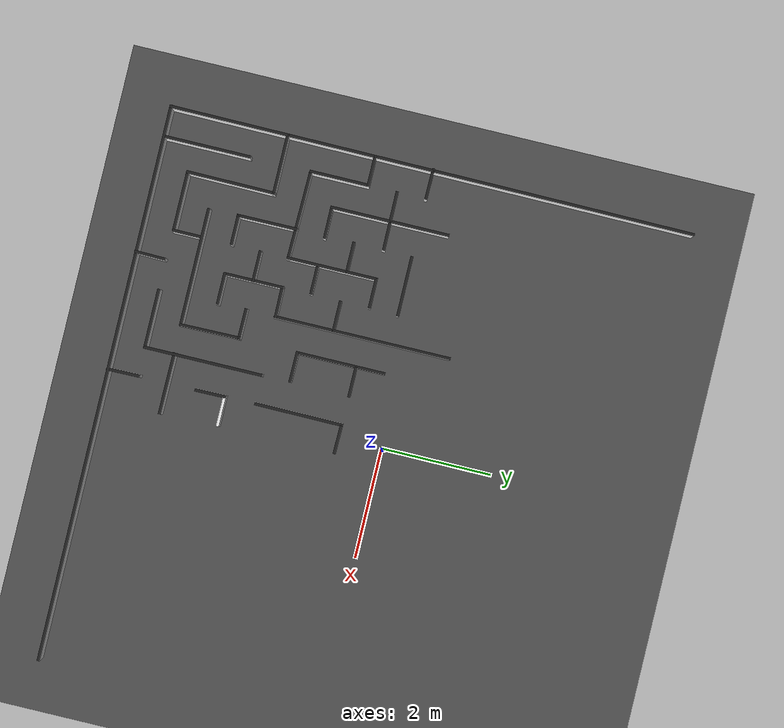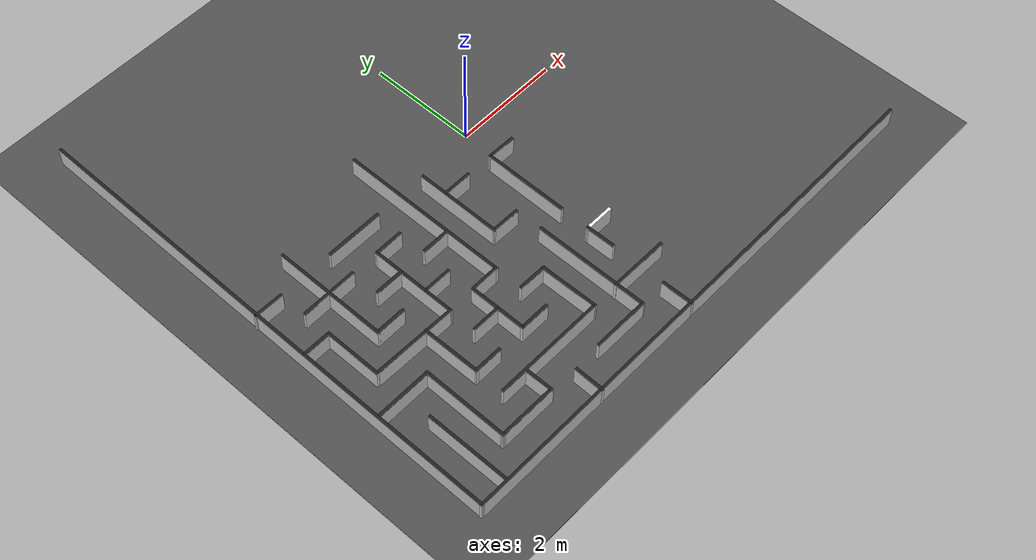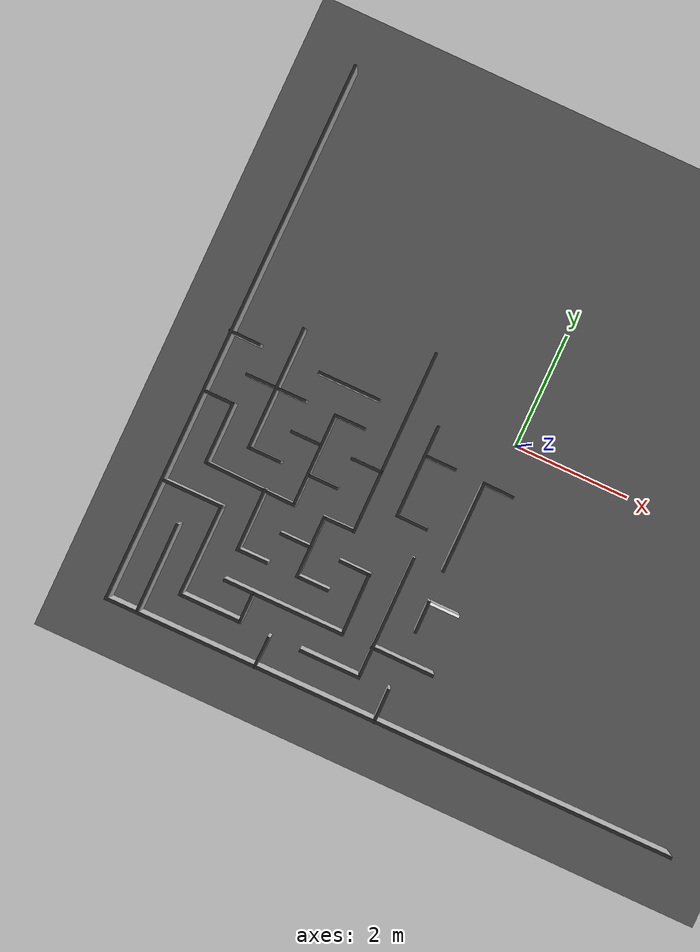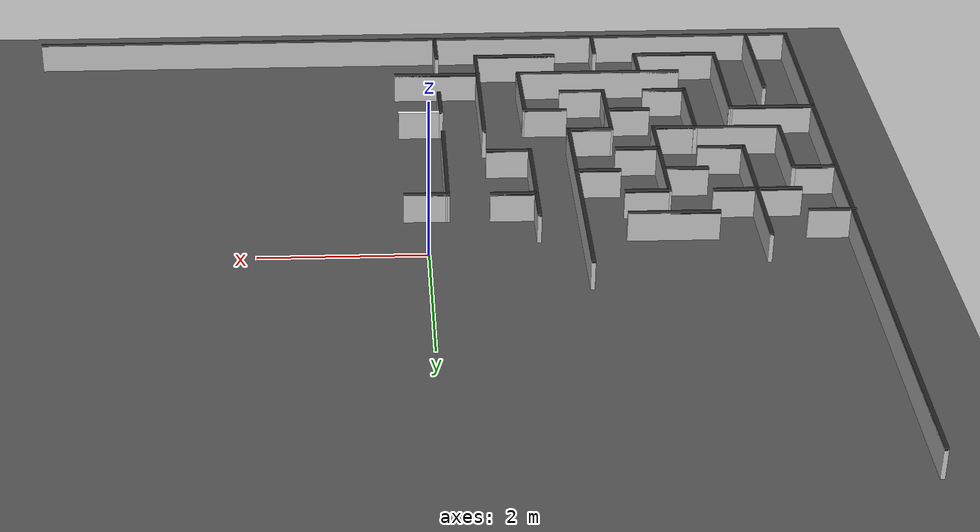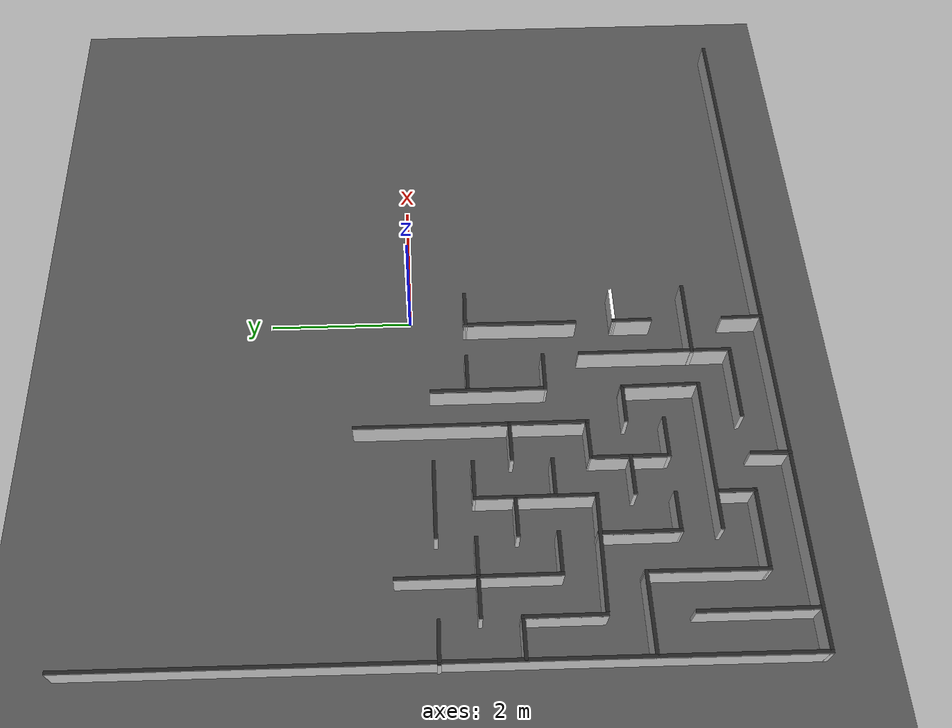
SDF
<sdf version="1.6">
 <world name="default">
  <model name="ground_plane">
   <static>1</static>
   <link name="link">
    <collision name="collision">
     <geometry><plane><normal>0 0 1</normal><size>100 100</size></plane></geometry>
     <surface><friction><ode><mu>100</mu><mu2>50</mu2></ode></friction></surface>
    </collision>
    <visual name="visual">
     <cast_shadows>0</cast_shadows>
     <geometry><plane><normal>0 0 1</normal><size>100 100</size></plane></geometry>
     <material>
      <script><uri>file://media/materials/scripts/gazebo.material</uri><name>Gazebo/Grey</name></script>
     </material>
    </visual>
   </link>
  </model>
  <model name="maze_cross_body">
   <link name="Wall_100">
    <collision name="Wall_100_Collision">
     <geometry><box><size>1.59983 0.05 0.37</size></box></geometry>
     <pose>0 0 0.185 0 -0 0</pose>
    </collision>
    <visual name="Wall_100_Visual">
     <pose>0 0 0.185 0 -0 0</pose>
     <geometry><box><size>1.59983 0.05 0.37</size></box></geometry>
     <material>
      <script><uri>file://media/materials/scripts/gazebo.material</uri><name>Gazebo/White</name></script>
      <ambient>1 1 1 1</ambient>
     </material>
    </visual>
    <pose>-0.249719 -1.55857 0 0 0 -1.57616</pose>
   </link>
   <link name="Wall_102">
    <collision name="Wall_102_Collision">
     <geometry><box><size>0.549064 0.05 0.37</size></box></geometry>
     <pose>0 0 0.185 0 -0 0</pose>
    </collision>
    <visual name="Wall_102_Visual">
     <pose>0 0 0.185 0 -0 0</pose>
     <geometry><box><size>0.549064 0.05 0.37</size></box></geometry>
     <material>
      <script><uri>file://media/materials/scripts/gazebo.material</uri><name>Gazebo/White</name></script>
      <ambient>1 1 1 1</ambient>
     </material>
    </visual>
    <pose>0.003939 -0.787667 0 0 0 -0.016031</pose>
   </link>
   <link name="Wall_113">
    <collision name="Wall_113_Collision">
     <geometry><box><size>0.547706 0.05 0.37</size></box></geometry>
     <pose>0 0 0.185 0 -0 0</pose>
    </collision>
    <visual name="Wall_113_Visual">
     <pose>0 0 0.185 0 -0 0</pose>
     <geometry><box><size>0.547706 0.05 0.37</size></box></geometry>
     <material>
      <script><uri>file://media/materials/scripts/gazebo.material</uri><name>Gazebo/White</name></script>
      <ambient>1 1 1 1</ambient>
     </material>
    </visual>
    <pose>-1.02321 -0.774236 0 0 0 -3.14113</pose>
   </link>
   <link name="Wall_115">
    <collision name="Wall_115_Collision">
     <geometry><box><size>1.61623 0.05 0.37</size></box></geometry>
     <pose>0 0 0.185 0 -0 0</pose>
    </collision>
    <visual name="Wall_115_Visual">
     <pose>0 0 0.185 0 -0 0</pose>
     <geometry><box><size>1.61623 0.05 0.37</size></box></geometry>
     <material>
      <script><uri>file://media/materials/scripts/gazebo.material</uri><name>Gazebo/White</name></script>
      <ambient>1 1 1 1</ambient>
     </material>
    </visual>
    <pose>-1.3 -1.05435 0 0 0 -1.5708</pose>
   </link>
   <link name="Wall_116">
    <collision name="Wall_116_Collision">
     <geometry><box><size>0.564169 0.05 0.37</size></box></geometry>
     <pose>0 0 0.185 0 -0 0</pose>
    </collision>
    <visual name="Wall_116_Visual">
     <pose>0 0 0.185 0 -0 0</pose>
     <geometry><box><size>0.564169 0.05 0.37</size></box></geometry>
     <material>
      <script><uri>file://media/materials/scripts/gazebo.material</uri><name>Gazebo/White</name></script>
      <ambient>1 1 1 1</ambient>
     </material>
    </visual>
    <pose>-1.043 -1.84035 0 0 0 -0.011673</pose>
   </link>
   <link name="Wall_118">
    <collision name="Wall_118_Collision">
     <geometry><box><size>3.19574 0.05 0.37</size></box></geometry>
     <pose>0 0 0.185 0 -0 0</pose>
    </collision>
    <visual name="Wall_118_Visual">
     <pose>0 0 0.185 0 -0 0</pose>
     <geometry><box><size>3.19574 0.05 0.37</size></box></geometry>
     <material>
      <script><uri>file://media/materials/scripts/gazebo.material</uri><name>Gazebo/White</name></script>
      <ambient>1 1 1 1</ambient>
     </material>
    </visual>
    <pose>-1.825 -0.790222 0 0 0 -1.5708</pose>
   </link>
   <link name="Wall_120">
    <collision name="Wall_120_Collision">
     <geometry><box><size>0.579843 0.05 0.37</size></box></geometry>
     <pose>0 0 0.185 0 -0 0</pose>
    </collision>
    <visual name="Wall_120_Visual">
     <pose>0 0 0.185 0 -0 0</pose>
     <geometry><box><size>0.579843 0.05 0.37</size></box></geometry>
     <material>
      <script><uri>file://media/materials/scripts/gazebo.material</uri><name>Gazebo/White</name></script>
      <ambient>1 1 1 1</ambient>
     </material>
    </visual>
    <pose>-2.09 -2.36036 0 0 0 -3.13031</pose>
   </link>
   <link name="Wall_122">
    <collision name="Wall_122_Collision">
     <geometry><box><size>1.09021 0.05 0.37</size></box></geometry>
     <pose>0 0 0.185 0 -0 0</pose>
    </collision>
    <visual name="Wall_122_Visual">
     <pose>0 0 0.185 0 -0 0</pose>
     <geometry><box><size>1.09021 0.05 0.37</size></box></geometry>
     <material>
      <script><uri>file://media/materials/scripts/gazebo.material</uri><name>Gazebo/White</name></script>
      <ambient>1 1 1 1</ambient>
     </material>
    </visual>
    <pose>-2.35491 -2.88345 0 0 0 -1.57062</pose>
   </link>
   <link name="Wall_123">
    <collision name="Wall_123_Collision">
     <geometry><box><size>0.587478 0.05 0.37</size></box></geometry>
     <pose>0 0 0.185 0 -0 0</pose>
    </collision>
    <visual name="Wall_123_Visual">
     <pose>0 0 0.185 0 -0 0</pose>
     <geometry><box><size>0.587478 0.05 0.37</size></box></geometry>
     <material>
      <script><uri>file://media/materials/scripts/gazebo.material</uri><name>Gazebo/White</name></script>
      <ambient>1 1 1 1</ambient>
     </material>
    </visual>
    <pose>-2.08609 -3.40356 0 0 -0 0</pose>
   </link>
   <link name="Wall_125">
    <collision name="Wall_125_Collision">
     <geometry><box><size>0.57 0.05 0.37</size></box></geometry>
     <pose>0 0 0.185 0 -0 0</pose>
    </collision>
    <visual name="Wall_125_Visual">
     <pose>0 0 0.185 0 -0 0</pose>
     <geometry><box><size>0.57 0.05 0.37</size></box></geometry>
     <material>
      <script><uri>file://media/materials/scripts/gazebo.material</uri><name>Gazebo/White</name></script>
      <ambient>1 1 1 1</ambient>
     </material>
    </visual>
    <pose>-2.61235 -2.88906 0 0 -0 0</pose>
   </link>
   <link name="Wall_127">
    <collision name="Wall_127_Collision">
     <geometry><box><size>1.1003 0.05 0.37</size></box></geometry>
     <pose>0 0 0.185 0 -0 0</pose>
    </collision>
    <visual name="Wall_127_Visual">
     <pose>0 0 0.185 0 -0 0</pose>
     <geometry><box><size>1.1003 0.05 0.37</size></box></geometry>
     <material>
      <script><uri>file://media/materials/scripts/gazebo.material</uri><name>Gazebo/White</name></script>
      <ambient>1 1 1 1</ambient>
     </material>
    </visual>
    <pose>-3.40784 -2.8905 0 0 0 -1.56668</pose>
   </link>
   <link name="Wall_128">
    <collision name="Wall_128_Collision">
     <geometry><box><size>0.56 0.05 0.37</size></box></geometry>
     <pose>0 0 0.185 0 -0 0</pose>
    </collision>
    <visual name="Wall_128_Visual">
     <pose>0 0 0.185 0 -0 0</pose>
     <geometry><box><size>0.56 0.05 0.37</size></box></geometry>
     <material>
      <script><uri>file://media/materials/scripts/gazebo.material</uri><name>Gazebo/White</name></script>
      <ambient>1 1 1 1</ambient>
     </material>
    </visual>
    <pose>-3.15068 -3.41132 0 0 -0 0</pose>
   </link>
   <link name="Wall_130">
    <collision name="Wall_130_Collision">
     <geometry><box><size>1.57814 0.05 0.37</size></box></geometry>
     <pose>0 0 0.185 0 -0 0</pose>
    </collision>
    <visual name="Wall_130_Visual">
     <pose>0 0 0.185 0 -0 0</pose>
     <geometry><box><size>1.57814 0.05 0.37</size></box></geometry>
     <material>
      <script><uri>file://media/materials/scripts/gazebo.material</uri><name>Gazebo/White</name></script>
      <ambient>1 1 1 1</ambient>
     </material>
    </visual>
    <pose>-3.6482 -2.36898 0 0 0 -0.019342</pose>
   </link>
   <link name="Wall_132">
    <collision name="Wall_132_Collision">
     <geometry><box><size>1.08525 0.05 0.37</size></box></geometry>
     <pose>0 0 0.185 0 -0 0</pose>
    </collision>
    <visual name="Wall_132_Visual">
     <pose>0 0 0.185 0 -0 0</pose>
     <geometry><box><size>1.08525 0.05 0.37</size></box></geometry>
     <material>
      <script><uri>file://media/materials/scripts/gazebo.material</uri><name>Gazebo/White</name></script>
      <ambient>1 1 1 1</ambient>
     </material>
    </visual>
    <pose>-4.458 -1.83085 0 0 0 -1.5708</pose>
   </link>
   <link name="Wall_134">
    <collision name="Wall_134_Collision">
     <geometry><box><size>0.57 0.05 0.37</size></box></geometry>
     <pose>0 0 0.185 0 -0 0</pose>
    </collision>
    <visual name="Wall_134_Visual">
     <pose>0 0 0.185 0 -0 0</pose>
     <geometry><box><size>0.57 0.05 0.37</size></box></geometry>
     <material>
      <script><uri>file://media/materials/scripts/gazebo.material</uri><name>Gazebo/White</name></script>
      <ambient>1 1 1 1</ambient>
     </material>
    </visual>
    <pose>-4.718 -1.31335 0 0 -0 0</pose>
   </link>
   <link name="Wall_136">
    <collision name="Wall_136_Collision">
     <geometry><box><size>2.15 0.05 0.37</size></box></geometry>
     <pose>0 0 0.185 0 -0 0</pose>
    </collision>
    <visual name="Wall_136_Visual">
     <pose>0 0 0.185 0 -0 0</pose>
     <geometry><box><size>2.15 0.05 0.37</size></box></geometry>
     <material>
      <script><uri>file://media/materials/scripts/gazebo.material</uri><name>Gazebo/White</name></script>
      <ambient>1 1 1 1</ambient>
     </material>
    </visual>
    <pose>-3.93021 -0.795276 0 0 0 -1.57059</pose>
   </link>
   <link name="Wall_138">
    <collision name="Wall_138_Collision">
     <geometry><box><size>0.591678 0.05 0.37</size></box></geometry>
     <pose>0 0 0.185 0 -0 0</pose>
    </collision>
    <visual name="Wall_138_Visual">
     <pose>0 0 0.185 0 -0 0</pose>
     <geometry><box><size>0.591678 0.05 0.37</size></box></geometry>
     <material>
      <script><uri>file://media/materials/scripts/gazebo.material</uri><name>Gazebo/White</name></script>
      <ambient>1 1 1 1</ambient>
     </material>
    </visual>
    <pose>-3.659 -1.84435 0 0 -0 0.00369</pose>
   </link>
   <link name="Wall_140">
    <collision name="Wall_140_Collision">
     <geometry><box><size>1.06924 0.05 0.37</size></box></geometry>
     <pose>0 0 0.185 0 -0 0</pose>
    </collision>
    <visual name="Wall_140_Visual">
     <pose>0 0 0.185 0 -0 0</pose>
     <geometry><box><size>1.06924 0.05 0.37</size></box></geometry>
     <material>
      <script><uri>file://media/materials/scripts/gazebo.material</uri><name>Gazebo/White</name></script>
      <ambient>1 1 1 1</ambient>
     </material>
    </visual>
    <pose>-3.9375 -0.787851 0 0 -0 0.006869</pose>
   </link>
   <link name="Wall_156">
    <collision name="Wall_156_Collision">
     <geometry><box><size>1.09 0.05 0.37</size></box></geometry>
     <pose>0 0 0.185 0 -0 0</pose>
    </collision>
    <visual name="Wall_156_Visual">
     <pose>0 0 0.185 0 -0 0</pose>
     <geometry><box><size>1.09 0.05 0.37</size></box></geometry>
     <material>
      <script><uri>file://media/materials/scripts/gazebo.material</uri><name>Gazebo/White</name></script>
      <ambient>1 1 1 1</ambient>
     </material>
    </visual>
    <pose>-2.87741 -0.271069 0 0 -0 0</pose>
   </link>
   <link name="Wall_158">
    <collision name="Wall_158_Collision">
     <geometry><box><size>0.558601 0.05 0.37</size></box></geometry>
     <pose>0 0 0.185 0 -0 0</pose>
    </collision>
    <visual name="Wall_158_Visual">
     <pose>0 0 0.185 0 -0 0</pose>
     <geometry><box><size>0.558601 0.05 0.37</size></box></geometry>
     <material>
      <script><uri>file://media/materials/scripts/gazebo.material</uri><name>Gazebo/White</name></script>
      <ambient>1 1 1 1</ambient>
     </material>
    </visual>
    <pose>-2.63071 -0.790068 0 0 -0 0.001113</pose>
   </link>
   <link name="Wall_160">
    <collision name="Wall_160_Collision">
     <geometry><box><size>1.6434 0.05 0.37</size></box></geometry>
     <pose>0 0 0.185 0 -0 0</pose>
    </collision>
    <visual name="Wall_160_Visual">
     <pose>0 0 0.185 0 -0 0</pose>
     <geometry><box><size>1.6434 0.05 0.37</size></box></geometry>
     <material>
      <script><uri>file://media/materials/scripts/gazebo.material</uri><name>Gazebo/White</name></script>
      <ambient>1 1 1 1</ambient>
     </material>
    </visual>
    <pose>-2.88464 -1.58705 0 0 0 -1.57034</pose>
   </link>
   <link name="Wall_178">
    <collision name="Wall_178_Collision">
     <geometry><box><size>0.562747 0.05 0.37</size></box></geometry>
     <pose>0 0 0.185 0 -0 0</pose>
    </collision>
    <visual name="Wall_178_Visual">
     <pose>0 0 0.185 0 -0 0</pose>
     <geometry><box><size>0.562747 0.05 0.37</size></box></geometry>
     <material>
      <script><uri>file://media/materials/scripts/gazebo.material</uri><name>Gazebo/White</name></script>
      <ambient>1 1 1 1</ambient>
     </material>
    </visual>
    <pose>-3.1485 -1.32335 0 0 -0 0</pose>
   </link>
   <link name="Wall_180">
    <collision name="Wall_180_Collision">
     <geometry><box><size>0.562923 0.05 0.37</size></box></geometry>
     <pose>0 0 0.185 0 -0 0</pose>
    </collision>
    <visual name="Wall_180_Visual">
     <pose>0 0 0.185 0 -0 0</pose>
     <geometry><box><size>0.562923 0.05 0.37</size></box></geometry>
     <material>
      <script><uri>file://media/materials/scripts/gazebo.material</uri><name>Gazebo/White</name></script>
      <ambient>1 1 1 1</ambient>
     </material>
    </visual>
    <pose>-2.0835 -1.31035 0 0 -0 0</pose>
   </link>
   <link name="Wall_182">
    <collision name="Wall_182_Collision">
     <geometry><box><size>0.55 0.05 0.37</size></box></geometry>
     <pose>0 0 0.185 0 -0 0</pose>
    </collision>
    <visual name="Wall_182_Visual">
     <pose>0 0 0.185 0 -0 0</pose>
     <geometry><box><size>0.55 0.05 0.37</size></box></geometry>
     <material>
      <script><uri>file://media/materials/scripts/gazebo.material</uri><name>Gazebo/White</name></script>
      <ambient>1 1 1 1</ambient>
     </material>
    </visual>
    <pose>-2.62468 -1.84671 0 0 -0 0</pose>
   </link>
   <link name="Wall_193">
    <collision name="Wall_193_Collision">
     <geometry><box><size>0.564228 0.05 0.37</size></box></geometry>
     <pose>0 0 0.185 0 -0 0</pose>
    </collision>
    <visual name="Wall_193_Visual">
     <pose>0 0 0.185 0 -0 0</pose>
     <geometry><box><size>0.564228 0.05 0.37</size></box></geometry>
     <material>
      <script><uri>file://media/materials/scripts/gazebo.material</uri><name>Gazebo/White</name></script>
      <ambient>1 1 1 1</ambient>
     </material>
    </visual>
    <pose>-4.734 -0.267351 0 0 -0 3.12992</pose>
   </link>
   <link name="Wall_195">
    <collision name="Wall_195_Collision">
     <geometry><box><size>0.601725 0.05 0.37</size></box></geometry>
     <pose>0 0 0.185 0 -0 0</pose>
    </collision>
    <visual name="Wall_195_Visual">
     <pose>0 0 0.185 0 -0 0</pose>
     <geometry><box><size>0.601725 0.05 0.37</size></box></geometry>
     <material>
      <script><uri>file://media/materials/scripts/gazebo.material</uri><name>Gazebo/White</name></script>
      <ambient>1 1 1 1</ambient>
     </material>
    </visual>
    <pose>-0.2465 -4.73535 0 0 0 -1.55812</pose>
   </link>
   <link name="Wall_232">
    <collision name="Wall_232_Collision">
     <geometry><box><size>0.56444 0.05 0.37</size></box></geometry>
     <pose>0 0 0.185 0 -0 0</pose>
    </collision>
    <visual name="Wall_232_Visual">
     <pose>0 0 0.185 0 -0 0</pose>
     <geometry><box><size>0.56444 0.05 0.37</size></box></geometry>
     <material>
      <script><uri>file://media/materials/scripts/gazebo.material</uri><name>Gazebo/White</name></script>
      <ambient>1 1 1 1</ambient>
     </material>
    </visual>
    <pose>-0.246528 -3.15514 0 0 0 -1.56097</pose>
   </link>
   <link name="Wall_234">
    <collision name="Wall_234_Collision">
     <geometry><box><size>0.564001 0.05 0.37</size></box></geometry>
     <pose>0 0 0.185 0 -0 0</pose>
    </collision>
    <visual name="Wall_234_Visual">
     <pose>0 0 0.185 0 -0 0</pose>
     <geometry><box><size>0.564001 0.05 0.37</size></box></geometry>
     <material>
      <script><uri>file://media/materials/scripts/gazebo.material</uri><name>Gazebo/White</name></script>
      <ambient>1 1 1 1</ambient>
     </material>
    </visual>
    <pose>0.007944 -2.90091 0 0 0 -0.001946</pose>
   </link>
   <link name="Wall_360">
    <collision name="Wall_360_Collision">
     <geometry><box><size>9.51311 0.05 0.37</size></box></geometry>
     <pose>0 0 0.185 0 -0 0</pose>
    </collision>
    <visual name="Wall_360_Visual">
     <pose>0 0 0.185 0 -0 0</pose>
     <geometry><box><size>9.51311 0.05 0.37</size></box></geometry>
     <material>
      <script><uri>file://media/materials/scripts/gazebo.material</uri><name>Gazebo/White</name></script>
      <ambient>1 1 1 1</ambient>
     </material>
    </visual>
    <pose>-4.97458 -0.283735 0 0 0 -1.57566</pose>
   </link>
   <link name="Wall_70">
    <collision name="Wall_70_Collision">
     <geometry><box><size>10.0516 0.05 0.37</size></box></geometry>
     <pose>0 0 0.185 0 -0 0</pose>
    </collision>
    <visual name="Wall_70_Visual">
     <pose>0 0 0.185 0 -0 0</pose>
     <geometry><box><size>10.0516 0.05 0.37</size></box></geometry>
     <material>
      <script><uri>file://media/materials/scripts/gazebo.material</uri><name>Gazebo/White</name></script>
      <ambient>1 1 1 1</ambient>
     </material>
    </visual>
    <pose>-7e-05 -5.00497 0 0 -0 0.002053</pose>
   </link>
   <link name="Wall_76">
    <collision name="Wall_76_Collision">
     <geometry><box><size>1.554 0.05 0.37</size></box></geometry>
     <pose>0 0 0.185 0 -0 0</pose>
    </collision>
    <visual name="Wall_76_Visual">
     <pose>0 0 0.185 0 -0 0</pose>
     <geometry><box><size>1.554 0.05 0.37</size></box></geometry>
     <material>
      <script><uri>file://media/materials/scripts/gazebo.material</uri><name>Gazebo/White</name></script>
      <ambient>1 1 1 1</ambient>
     </material>
    </visual>
    <pose>-4.4563 -4.21713 0 0 0 -1.5708</pose>
   </link>
   <link name="Wall_78">
    <collision name="Wall_78_Collision">
     <geometry><box><size>1.09989 0.05 0.37</size></box></geometry>
     <pose>0 0 0.185 0 -0 0</pose>
    </collision>
    <visual name="Wall_78_Visual">
     <pose>0 0 0.185 0 -0 0</pose>
     <geometry><box><size>1.09989 0.05 0.37</size></box></geometry>
     <material>
      <script><uri>file://media/materials/scripts/gazebo.material</uri><name>Gazebo/White</name></script>
      <ambient>1 1 1 1</ambient>
     </material>
    </visual>
    <pose>-4.459 -2.89735 0 0 -0 0</pose>
   </link>
   <link name="Wall_79">
    <collision name="Wall_79_Collision">
     <geometry><box><size>1.61003 0.05 0.37</size></box></geometry>
     <pose>0 0 0.185 0 -0 0</pose>
    </collision>
    <visual name="Wall_79_Visual">
     <pose>0 0 0.185 0 -0 0</pose>
     <geometry><box><size>1.61003 0.05 0.37</size></box></geometry>
     <material>
      <script><uri>file://media/materials/scripts/gazebo.material</uri><name>Gazebo/White</name></script>
      <ambient>1 1 1 1</ambient>
     </material>
    </visual>
    <pose>-3.939 -3.67735 0 0 0 -1.57721</pose>
   </link>
   <link name="Wall_80">
    <collision name="Wall_80_Collision">
     <geometry><box><size>1.10989 0.05 0.37</size></box></geometry>
     <pose>0 0 0.185 0 -0 0</pose>
    </collision>
    <visual name="Wall_80_Visual">
     <pose>0 0 0.185 0 -0 0</pose>
     <geometry><box><size>1.10989 0.05 0.37</size></box></geometry>
     <material>
      <script><uri>file://media/materials/scripts/gazebo.material</uri><name>Gazebo/White</name></script>
      <ambient>1 1 1 1</ambient>
     </material>
    </visual>
    <pose>-3.414 -4.45735 0 0 -0 0</pose>
   </link>
   <link name="Wall_81">
    <collision name="Wall_81_Collision">
     <geometry><box><size>0.539642 0.05 0.37</size></box></geometry>
     <pose>0 0 0.185 0 -0 0</pose>
    </collision>
    <visual name="Wall_81_Visual">
     <pose>0 0 0.185 0 -0 0</pose>
     <geometry><box><size>0.539642 0.05 0.37</size></box></geometry>
     <material>
      <script><uri>file://media/materials/scripts/gazebo.material</uri><name>Gazebo/White</name></script>
      <ambient>1 1 1 1</ambient>
     </material>
    </visual>
    <pose>-2.884 -4.21235 0 0 -0 1.5708</pose>
   </link>
   <link name="Wall_83">
    <collision name="Wall_83_Collision">
     <geometry><box><size>2.13572 0.05 0.37</size></box></geometry>
     <pose>0 0 0.185 0 -0 0</pose>
    </collision>
    <visual name="Wall_83_Visual">
     <pose>0 0 0.185 0 -0 0</pose>
     <geometry><box><size>2.13572 0.05 0.37</size></box></geometry>
     <material>
      <script><uri>file://media/materials/scripts/gazebo.material</uri><name>Gazebo/White</name></script>
      <ambient>1 1 1 1</ambient>
     </material>
    </visual>
    <pose>-2.34114 -3.94735 0 0 -0 0</pose>
   </link>
   <link name="Wall_85">
    <collision name="Wall_85_Collision">
     <geometry><box><size>1.10069 0.05 0.37</size></box></geometry>
     <pose>0 0 0.185 0 -0 0</pose>
    </collision>
    <visual name="Wall_85_Visual">
     <pose>0 0 0.185 0 -0 0</pose>
     <geometry><box><size>1.10069 0.05 0.37</size></box></geometry>
     <material>
      <script><uri>file://media/materials/scripts/gazebo.material</uri><name>Gazebo/White</name></script>
      <ambient>1 1 1 1</ambient>
     </material>
    </visual>
    <pose>-1.30492 -3.42201 0 0 0 -1.55816</pose>
   </link>
   <link name="Wall_87">
    <collision name="Wall_87_Collision">
     <geometry><box><size>0.564907 0.05 0.37</size></box></geometry>
     <pose>0 0 0.185 0 -0 0</pose>
    </collision>
    <visual name="Wall_87_Visual">
     <pose>0 0 0.185 0 -0 0</pose>
     <geometry><box><size>0.564907 0.05 0.37</size></box></geometry>
     <material>
      <script><uri>file://media/materials/scripts/gazebo.material</uri><name>Gazebo/White</name></script>
      <ambient>1 1 1 1</ambient>
     </material>
    </visual>
    <pose>-1.56328 -2.89401 0 0 0 -0.01032</pose>
   </link>
   <link name="Wall_89">
    <collision name="Wall_89_Collision">
     <geometry><box><size>0.559847 0.05 0.37</size></box></geometry>
     <pose>0 0 0.185 0 -0 0</pose>
    </collision>
    <visual name="Wall_89_Visual">
     <pose>0 0 0.185 0 -0 0</pose>
     <geometry><box><size>0.559847 0.05 0.37</size></box></geometry>
     <material>
      <script><uri>file://media/materials/scripts/gazebo.material</uri><name>Gazebo/White</name></script>
      <ambient>1 1 1 1</ambient>
     </material>
    </visual>
    <pose>-2.36 -4.76035 0 0 0 -1.5904</pose>
   </link>
   <link name="Wall_91">
    <collision name="Wall_91_Collision">
     <geometry><box><size>1.07871 0.05 0.37</size></box></geometry>
     <pose>0 0 0.185 0 -0 0</pose>
    </collision>
    <visual name="Wall_91_Visual">
     <pose>0 0 0.185 0 -0 0</pose>
     <geometry><box><size>1.07871 0.05 0.37</size></box></geometry>
     <material>
      <script><uri>file://media/materials/scripts/gazebo.material</uri><name>Gazebo/White</name></script>
      <ambient>1 1 1 1</ambient>
     </material>
    </visual>
    <pose>-1.28166 -4.46613 0 0 -0 0.000426</pose>
   </link>
   <link name="Wall_92">
    <collision name="Wall_92_Collision">
     <geometry><box><size>2.15 0.05 0.37</size></box></geometry>
     <pose>0 0 0.185 0 -0 0</pose>
    </collision>
    <visual name="Wall_92_Visual">
     <pose>0 0 0.185 0 -0 0</pose>
     <geometry><box><size>2.15 0.05 0.37</size></box></geometry>
     <material>
      <script><uri>file://media/materials/scripts/gazebo.material</uri><name>Gazebo/White</name></script>
      <ambient>1 1 1 1</ambient>
     </material>
    </visual>
    <pose>-0.767316 -3.41591 0 0 -0 1.5708</pose>
   </link>
   <link name="Wall_95">
    <collision name="Wall_95_Collision">
     <geometry><box><size>1.11599 0.05 0.37</size></box></geometry>
     <pose>0 0 0.185 0 -0 0</pose>
    </collision>
    <visual name="Wall_95_Visual">
     <pose>0 0 0.185 0 -0 0</pose>
     <geometry><box><size>1.11599 0.05 0.37</size></box></geometry>
     <material>
      <script><uri>file://media/materials/scripts/gazebo.material</uri><name>Gazebo/White</name></script>
      <ambient>1 1 1 1</ambient>
     </material>
    </visual>
    <pose>-0.242 -3.94085 0 0 0 -0.006567</pose>
   </link>
   <static>1</static>
  </model>
  <model name="asphalt_white_plane">
   <static>1</static>
   <link name="link">
    <collision name="collision"><geometry><box><size>60 60 0.005</size></box></geometry></collision>
    <visual name="visual">
     <cast_shadows>0</cast_shadows>
     <geometry><box><size>60 60 0.005</size></box></geometry>
     <material>
      <script>
       <uri>model://asphalt_white_plane/materials/scripts</uri>
       <uri>model://asphalt_white_plane/materials/textures</uri>
       <name>vrc/asphalt_white</name>
      </script>
     </material>
    </visual>
   </link>
   <pose>-0.053858 -0.002137 0 0 -0 0</pose>
  </model>
  <model name="maze_cross_body_0">
   <link name="Wall_100">
    <collision name="Wall_100_Collision">
     <geometry><box><size>1.59983 0.05 0.03</size></box></geometry>
     <pose>0 0 0.37 0 -0 0</pose>
    </collision>
    <visual name="Wall_100_Visual">
     <pose>0 0 0.37 0 -0 0</pose>
     <geometry><box><size>1.59983 0.05 0.03</size></box></geometry>
     <material>
      <script><uri>file://media/materials/scripts/gazebo.material</uri><name>Gazebo/Black</name></script>
      <ambient>0 0 0 1</ambient>
     </material>
    </visual>
    <pose>-0.249719 -1.55857 0 0 0 -1.57616</pose>
   </link>
   <link name="Wall_102">
    <collision name="Wall_102_Collision">
     <geometry><box><size>0.549064 0.05 0.03</size></box></geometry>
     <pose>0 0 0.37 0 -0 0</pose>
    </collision>
    <visual name="Wall_102_Visual">
     <pose>0 0 0.37 0 -0 0</pose>
     <geometry><box><size>0.549064 0.05 0.03</size></box></geometry>
     <material>
      <script><uri>file://media/materials/scripts/gazebo.material</uri><name>Gazebo/Black</name></script>
      <ambient>0 0 0 1</ambient>
     </material>
    </visual>
    <pose>0.003939 -0.787667 0 0 0 -0.016031</pose>
   </link>
   <link name="Wall_113">
    <collision name="Wall_113_Collision">
     <geometry><box><size>0.547706 0.05 0.03</size></box></geometry>
     <pose>0 0 0.37 0 -0 0</pose>
    </collision>
    <visual name="Wall_113_Visual">
     <pose>0 0 0.37 0 -0 0</pose>
     <geometry><box><size>0.547706 0.05 0.03</size></box></geometry>
     <material>
      <script><uri>file://media/materials/scripts/gazebo.material</uri><name>Gazebo/Black</name></script>
      <ambient>0 0 0 1</ambient>
     </material>
    </visual>
    <pose>-1.02321 -0.774236 0 0 0 -3.14113</pose>
   </link>
   <link name="Wall_115">
    <collision name="Wall_115_Collision">
     <geometry><box><size>1.61623 0.05 0.03</size></box></geometry>
     <pose>0 0 0.37 0 -0 0</pose>
    </collision>
    <visual name="Wall_115_Visual">
     <pose>0 0 0.37 0 -0 0</pose>
     <geometry><box><size>1.61623 0.05 0.03</size></box></geometry>
     <material>
      <script><uri>file://media/materials/scripts/gazebo.material</uri><name>Gazebo/Black</name></script>
      <ambient>0 0 0 1</ambient>
     </material>
    </visual>
    <pose>-1.3 -1.05435 0 0 0 -1.5708</pose>
   </link>
   <link name="Wall_116">
    <collision name="Wall_116_Collision">
     <geometry><box><size>0.564169 0.05 0.03</size></box></geometry>
     <pose>0 0 0.37 0 -0 0</pose>
    </collision>
    <visual name="Wall_116_Visual">
     <pose>0 0 0.37 0 -0 0</pose>
     <geometry><box><size>0.564169 0.05 0.03</size></box></geometry>
     <material>
      <script><uri>file://media/materials/scripts/gazebo.material</uri><name>Gazebo/Black</name></script>
      <ambient>0 0 0 1</ambient>
     </material>
    </visual>
    <pose>-1.043 -1.84035 0 0 0 -0.011673</pose>
   </link>
   <link name="Wall_118">
    <collision name="Wall_118_Collision">
     <geometry><box><size>3.19574 0.05 0.03</size></box></geometry>
     <pose>0 0 0.37 0 -0 0</pose>
    </collision>
    <visual name="Wall_118_Visual">
     <pose>0 0 0.37 0 -0 0</pose>
     <geometry><box><size>3.19574 0.05 0.03</size></box></geometry>
     <material>
      <script><uri>file://media/materials/scripts/gazebo.material</uri><name>Gazebo/Black</name></script>
      <ambient>0 0 0 1</ambient>
     </material>
    </visual>
    <pose>-1.825 -0.790222 0 0 0 -1.5708</pose>
   </link>
   <link name="Wall_120">
    <collision name="Wall_120_Collision">
     <geometry><box><size>0.579843 0.05 0.03</size></box></geometry>
     <pose>0 0 0.37 0 -0 0</pose>
    </collision>
    <visual name="Wall_120_Visual">
     <pose>0 0 0.37 0 -0 0</pose>
     <geometry><box><size>0.579843 0.05 0.03</size></box></geometry>
     <material>
      <script><uri>file://media/materials/scripts/gazebo.material</uri><name>Gazebo/Black</name></script>
      <ambient>0 0 0 1</ambient>
     </material>
    </visual>
    <pose>-2.09 -2.36036 0 0 0 -3.13031</pose>
   </link>
   <link name="Wall_122">
    <collision name="Wall_122_Collision">
     <geometry><box><size>1.09021 0.05 0.03</size></box></geometry>
     <pose>0 0 0.37 0 -0 0</pose>
    </collision>
    <visual name="Wall_122_Visual">
     <pose>0 0 0.37 0 -0 0</pose>
     <geometry><box><size>1.09021 0.05 0.03</size></box></geometry>
     <material>
      <script><uri>file://media/materials/scripts/gazebo.material</uri><name>Gazebo/Black</name></script>
      <ambient>0 0 0 1</ambient>
     </material>
    </visual>
    <pose>-2.35491 -2.88345 0 0 0 -1.57062</pose>
   </link>
   <link name="Wall_123">
    <collision name="Wall_123_Collision">
     <geometry><box><size>0.587478 0.05 0.03</size></box></geometry>
     <pose>0 0 0.37 0 -0 0</pose>
    </collision>
    <visual name="Wall_123_Visual">
     <pose>0 0 0.37 0 -0 0</pose>
     <geometry><box><size>0.587478 0.05 0.03</size></box></geometry>
     <material>
      <script><uri>file://media/materials/scripts/gazebo.material</uri><name>Gazebo/Black</name></script>
      <ambient>0 0 0 1</ambient>
     </material>
    </visual>
    <pose>-2.08609 -3.40356 0 0 -0 0</pose>
   </link>
   <link name="Wall_125">
    <collision name="Wall_125_Collision">
     <geometry><box><size>0.57 0.05 0.03</size></box></geometry>
     <pose>0 0 0.37 0 -0 0</pose>
    </collision>
    <visual name="Wall_125_Visual">
     <pose>0 0 0.37 0 -0 0</pose>
     <geometry><box><size>0.57 0.05 0.03</size></box></geometry>
     <material>
      <script><uri>file://media/materials/scripts/gazebo.material</uri><name>Gazebo/Black</name></script>
      <ambient>0 0 0 1</ambient>
     </material>
    </visual>
    <pose>-2.61235 -2.88906 0 0 -0 0</pose>
   </link>
   <link name="Wall_127">
    <collision name="Wall_127_Collision">
     <geometry><box><size>1.1003 0.05 0.03</size></box></geometry>
     <pose>0 0 0.37 0 -0 0</pose>
    </collision>
    <visual name="Wall_127_Visual">
     <pose>0 0 0.37 0 -0 0</pose>
     <geometry><box><size>1.1003 0.05 0.03</size></box></geometry>
     <material>
      <script><uri>file://media/materials/scripts/gazebo.material</uri><name>Gazebo/Black</name></script>
      <ambient>0 0 0 1</ambient>
     </material>
    </visual>
    <pose>-3.40784 -2.8905 0 0 0 -1.56668</pose>
   </link>
   <link name="Wall_128">
    <collision name="Wall_128_Collision">
     <geometry><box><size>0.56 0.05 0.03</size></box></geometry>
     <pose>0 0 0.37 0 -0 0</pose>
    </collision>
    <visual name="Wall_128_Visual">
     <pose>0 0 0.37 0 -0 0</pose>
     <geometry><box><size>0.56 0.05 0.03</size></box></geometry>
     <material>
      <script><uri>file://media/materials/scripts/gazebo.material</uri><name>Gazebo/Black</name></script>
      <ambient>0 0 0 1</ambient>
     </material>
    </visual>
    <pose>-3.15068 -3.41132 0 0 -0 0</pose>
   </link>
   <link name="Wall_130">
    <collision name="Wall_130_Collision">
     <geometry><box><size>1.57814 0.05 0.03</size></box></geometry>
     <pose>0 0 0.37 0 -0 0</pose>
    </collision>
    <visual name="Wall_130_Visual">
     <pose>0 0 0.37 0 -0 0</pose>
     <geometry><box><size>1.57814 0.05 0.03</size></box></geometry>
     <material>
      <script><uri>file://media/materials/scripts/gazebo.material</uri><name>Gazebo/Black</name></script>
      <ambient>0 0 0 1</ambient>
     </material>
    </visual>
    <pose>-3.6482 -2.36898 0 0 0 -0.019342</pose>
   </link>
   <link name="Wall_132">
    <collision name="Wall_132_Collision">
     <geometry><box><size>1.08525 0.05 0.03</size></box></geometry>
     <pose>0 0 0.37 0 -0 0</pose>
    </collision>
    <visual name="Wall_132_Visual">
     <pose>0 0 0.37 0 -0 0</pose>
     <geometry><box><size>1.08525 0.05 0.03</size></box></geometry>
     <material>
      <script><uri>file://media/materials/scripts/gazebo.material</uri><name>Gazebo/Black</name></script>
      <ambient>0 0 0 1</ambient>
     </material>
    </visual>
    <pose>-4.458 -1.83085 0 0 0 -1.5708</pose>
   </link>
   <link name="Wall_134">
    <collision name="Wall_134_Collision">
     <geometry><box><size>0.57 0.05 0.03</size></box></geometry>
     <pose>0 0 0.37 0 -0 0</pose>
    </collision>
    <visual name="Wall_134_Visual">
     <pose>0 0 0.37 0 -0 0</pose>
     <geometry><box><size>0.57 0.05 0.03</size></box></geometry>
     <material>
      <script><uri>file://media/materials/scripts/gazebo.material</uri><name>Gazebo/Black</name></script>
      <ambient>0 0 0 1</ambient>
     </material>
    </visual>
    <pose>-4.718 -1.31335 0 0 -0 0</pose>
   </link>
   <link name="Wall_136">
    <collision name="Wall_136_Collision">
     <geometry><box><size>2.15 0.05 0.03</size></box></geometry>
     <pose>0 0 0.37 0 -0 0</pose>
    </collision>
    <visual name="Wall_136_Visual">
     <pose>0 0 0.37 0 -0 0</pose>
     <geometry><box><size>2.15 0.05 0.03</size></box></geometry>
     <material>
      <script><uri>file://media/materials/scripts/gazebo.material</uri><name>Gazebo/Black</name></script>
      <ambient>0 0 0 1</ambient>
     </material>
    </visual>
    <pose>-3.93021 -0.795276 0 0 0 -1.57059</pose>
   </link>
   <link name="Wall_138">
    <collision name="Wall_138_Collision">
     <geometry><box><size>0.591678 0.05 0.03</size></box></geometry>
     <pose>0 0 0.37 0 -0 0</pose>
    </collision>
    <visual name="Wall_138_Visual">
     <pose>0 0 0.37 0 -0 0</pose>
     <geometry><box><size>0.591678 0.05 0.03</size></box></geometry>
     <material>
      <script><uri>file://media/materials/scripts/gazebo.material</uri><name>Gazebo/Black</name></script>
      <ambient>0 0 0 1</ambient>
     </material>
    </visual>
    <pose>-3.659 -1.84435 0 0 -0 0.00369</pose>
   </link>
   <link name="Wall_140">
    <collision name="Wall_140_Collision">
     <geometry><box><size>1.06924 0.05 0.03</size></box></geometry>
     <pose>0 0 0.37 0 -0 0</pose>
    </collision>
    <visual name="Wall_140_Visual">
     <pose>0 0 0.37 0 -0 0</pose>
     <geometry><box><size>1.06924 0.05 0.03</size></box></geometry>
     <material>
      <script><uri>file://media/materials/scripts/gazebo.material</uri><name>Gazebo/Black</name></script>
      <ambient>0 0 0 1</ambient>
     </material>
    </visual>
    <pose>-3.9375 -0.787851 0 0 -0 0.006869</pose>
   </link>
   <link name="Wall_156">
    <collision name="Wall_156_Collision">
     <geometry><box><size>1.09 0.05 0.03</size></box></geometry>
     <pose>0 0 0.37 0 -0 0</pose>
    </collision>
    <visual name="Wall_156_Visual">
     <pose>0 0 0.37 0 -0 0</pose>
     <geometry><box><size>1.09 0.05 0.03</size></box></geometry>
     <material>
      <script><uri>file://media/materials/scripts/gazebo.material</uri><name>Gazebo/Black</name></script>
      <ambient>0 0 0 1</ambient>
     </material>
    </visual>
    <pose>-2.87741 -0.271069 0 0 -0 0</pose>
   </link>
   <link name="Wall_158">
    <collision name="Wall_158_Collision">
     <geometry><box><size>0.558601 0.05 0.03</size></box></geometry>
     <pose>0 0 0.37 0 -0 0</pose>
    </collision>
    <visual name="Wall_158_Visual">
     <pose>0 0 0.37 0 -0 0</pose>
     <geometry><box><size>0.558601 0.05 0.03</size></box></geometry>
     <material>
      <script><uri>file://media/materials/scripts/gazebo.material</uri><name>Gazebo/Black</name></script>
      <ambient>0 0 0 1</ambient>
     </material>
    </visual>
    <pose>-2.63071 -0.790068 0 0 -0 0.001113</pose>
   </link>
   <link name="Wall_160">
    <collision name="Wall_160_Collision">
     <geometry><box><size>1.6434 0.05 0.03</size></box></geometry>
     <pose>0 0 0.37 0 -0 0</pose>
    </collision>
    <visual name="Wall_160_Visual">
     <pose>0 0 0.37 0 -0 0</pose>
     <geometry><box><size>1.6434 0.05 0.03</size></box></geometry>
     <material>
      <script><uri>file://media/materials/scripts/gazebo.material</uri><name>Gazebo/Black</name></script>
      <ambient>0 0 0 1</ambient>
     </material>
    </visual>
    <pose>-2.88464 -1.58705 0 0 0 -1.57034</pose>
   </link>
   <link name="Wall_178">
    <collision name="Wall_178_Collision">
     <geometry><box><size>0.562747 0.05 0.03</size></box></geometry>
     <pose>0 0 0.37 0 -0 0</pose>
    </collision>
    <visual name="Wall_178_Visual">
     <pose>0 0 0.37 0 -0 0</pose>
     <geometry><box><size>0.562747 0.05 0.03</size></box></geometry>
     <material>
      <script><uri>file://media/materials/scripts/gazebo.material</uri><name>Gazebo/Black</name></script>
      <ambient>0 0 0 1</ambient>
     </material>
    </visual>
    <pose>-3.1485 -1.32335 0 0 -0 0</pose>
   </link>
   <link name="Wall_180">
    <collision name="Wall_180_Collision">
     <geometry><box><size>0.562923 0.05 0.03</size></box></geometry>
     <pose>0 0 0.37 0 -0 0</pose>
    </collision>
    <visual name="Wall_180_Visual">
     <pose>0 0 0.37 0 -0 0</pose>
     <geometry><box><size>0.562923 0.05 0.03</size></box></geometry>
     <material>
      <script><uri>file://media/materials/scripts/gazebo.material</uri><name>Gazebo/Black</name></script>
      <ambient>0 0 0 1</ambient>
     </material>
    </visual>
    <pose>-2.0835 -1.31035 0 0 -0 0</pose>
   </link>
   <link name="Wall_182">
    <collision name="Wall_182_Collision">
     <geometry><box><size>0.55 0.05 0.03</size></box></geometry>
     <pose>0 0 0.37 0 -0 0</pose>
    </collision>
    <visual name="Wall_182_Visual">
     <pose>0 0 0.37 0 -0 0</pose>
     <geometry><box><size>0.55 0.05 0.03</size></box></geometry>
     <material>
      <script><uri>file://media/materials/scripts/gazebo.material</uri><name>Gazebo/Black</name></script>
      <ambient>0 0 0 1</ambient>
     </material>
    </visual>
    <pose>-2.62468 -1.84671 0 0 -0 0</pose>
   </link>
   <link name="Wall_193">
    <collision name="Wall_193_Collision">
     <geometry><box><size>0.564228 0.05 0.03</size></box></geometry>
     <pose>0 0 0.37 0 -0 0</pose>
    </collision>
    <visual name="Wall_193_Visual">
     <pose>0 0 0.37 0 -0 0</pose>
     <geometry><box><size>0.564228 0.05 0.03</size></box></geometry>
     <material>
      <script><uri>file://media/materials/scripts/gazebo.material</uri><name>Gazebo/Black</name></script>
      <ambient>0 0 0 1</ambient>
     </material>
    </visual>
    <pose>-4.734 -0.267351 0 0 -0 3.12992</pose>
   </link>
   <link name="Wall_195">
    <collision name="Wall_195_Collision">
     <geometry><box><size>0.601725 0.05 0.03</size></box></geometry>
     <pose>0 0 0.37 0 -0 0</pose>
    </collision>
    <visual name="Wall_195_Visual">
     <pose>0 0 0.37 0 -0 0</pose>
     <geometry><box><size>0.601725 0.05 0.03</size></box></geometry>
     <material>
      <script><uri>file://media/materials/scripts/gazebo.material</uri><name>Gazebo/Black</name></script>
      <ambient>0 0 0 1</ambient>
     </material>
    </visual>
    <pose>-0.2465 -4.73535 0 0 0 -1.55812</pose>
   </link>
   <link name="Wall_232">
    <collision name="Wall_232_Collision">
     <geometry><box><size>0.56444 0.05 0.03</size></box></geometry>
     <pose>0 0 0.37 0 -0 0</pose>
    </collision>
    <visual name="Wall_232_Visual">
     <pose>0 0 0.37 0 -0 0</pose>
     <geometry><box><size>0.56444 0.05 0.03</size></box></geometry>
     <material>
      <script><uri>file://media/materials/scripts/gazebo.material</uri><name>Gazebo/Black</name></script>
      <ambient>0 0 0 1</ambient>
     </material>
    </visual>
    <pose>-0.246528 -3.15514 0 0 0 -1.56097</pose>
   </link>
   <link name="Wall_360">
    <collision name="Wall_360_Collision">
     <geometry><box><size>9.51311 0.05 0.03</size></box></geometry>
     <pose>0 0 0.37 0 -0 0</pose>
    </collision>
    <visual name="Wall_360_Visual">
     <pose>0 0 0.37 0 -0 0</pose>
     <geometry><box><size>9.51311 0.05 0.03</size></box></geometry>
     <material>
      <script><uri>file://media/materials/scripts/gazebo.material</uri><name>Gazebo/Black</name></script>
      <ambient>0 0 0 1</ambient>
     </material>
    </visual>
    <pose>-4.97458 -0.283735 0 0 0 -1.57566</pose>
   </link>
   <link name="Wall_70">
    <collision name="Wall_70_Collision">
     <geometry><box><size>10.0516 0.05 0.03</size></box></geometry>
     <pose>0 0 0.37 0 -0 0</pose>
    </collision>
    <visual name="Wall_70_Visual">
     <pose>0 0 0.37 0 -0 0</pose>
     <geometry><box><size>10.0516 0.05 0.03</size></box></geometry>
     <material>
      <script><uri>file://media/materials/scripts/gazebo.material</uri><name>Gazebo/Black</name></script>
      <ambient>0 0 0 1</ambient>
     </material>
    </visual>
    <pose>-7e-05 -5.00497 0 0 -0 0.002053</pose>
   </link>
   <link name="Wall_76">
    <collision name="Wall_76_Collision">
     <geometry><box><size>1.554 0.05 0.03</size></box></geometry>
     <pose>0 0 0.37 0 -0 0</pose>
    </collision>
    <visual name="Wall_76_Visual">
     <pose>0 0 0.37 0 -0 0</pose>
     <geometry><box><size>1.554 0.05 0.03</size></box></geometry>
     <material>
      <script><uri>file://media/materials/scripts/gazebo.material</uri><name>Gazebo/Black</name></script>
      <ambient>0 0 0 1</ambient>
     </material>
    </visual>
    <pose>-4.4563 -4.21713 0 0 0 -1.5708</pose>
   </link>
   <link name="Wall_78">
    <collision name="Wall_78_Collision">
     <geometry><box><size>1.09989 0.05 0.03</size></box></geometry>
     <pose>0 0 0.37 0 -0 0</pose>
    </collision>
    <visual name="Wall_78_Visual">
     <pose>0 0 0.37 0 -0 0</pose>
     <geometry><box><size>1.09989 0.05 0.03</size></box></geometry>
     <material>
      <script><uri>file://media/materials/scripts/gazebo.material</uri><name>Gazebo/Black</name></script>
      <ambient>0 0 0 1</ambient>
     </material>
    </visual>
    <pose>-4.459 -2.89735 0 0 -0 0</pose>
   </link>
   <link name="Wall_79">
    <collision name="Wall_79_Collision">
     <geometry><box><size>1.61003 0.05 0.03</size></box></geometry>
     <pose>0 0 0.37 0 -0 0</pose>
    </collision>
    <visual name="Wall_79_Visual">
     <pose>0 0 0.37 0 -0 0</pose>
     <geometry><box><size>1.61003 0.05 0.03</size></box></geometry>
     <material>
      <script><uri>file://media/materials/scripts/gazebo.material</uri><name>Gazebo/Black</name></script>
      <ambient>0 0 0 1</ambient>
     </material>
    </visual>
    <pose>-3.939 -3.67735 0 0 0 -1.57721</pose>
   </link>
   <link name="Wall_80">
    <collision name="Wall_80_Collision">
     <geometry><box><size>1.10989 0.05 0.03</size></box></geometry>
     <pose>0 0 0.37 0 -0 0</pose>
    </collision>
    <visual name="Wall_80_Visual">
     <pose>0 0 0.37 0 -0 0</pose>
     <geometry><box><size>1.10989 0.05 0.03</size></box></geometry>
     <material>
      <script><uri>file://media/materials/scripts/gazebo.material</uri><name>Gazebo/Black</name></script>
      <ambient>0 0 0 1</ambient>
     </material>
    </visual>
    <pose>-3.414 -4.45735 0 0 -0 0</pose>
   </link>
   <link name="Wall_81">
    <collision name="Wall_81_Collision">
     <geometry><box><size>0.539642 0.05 0.03</size></box></geometry>
     <pose>0 0 0.37 0 -0 0</pose>
    </collision>
    <visual name="Wall_81_Visual">
     <pose>0 0 0.37 0 -0 0</pose>
     <geometry><box><size>0.539642 0.05 0.03</size></box></geometry>
     <material>
      <script><uri>file://media/materials/scripts/gazebo.material</uri><name>Gazebo/Black</name></script>
      <ambient>0 0 0 1</ambient>
     </material>
    </visual>
    <pose>-2.884 -4.21235 0 0 -0 1.5708</pose>
   </link>
   <link name="Wall_83">
    <collision name="Wall_83_Collision">
     <geometry><box><size>2.13572 0.05 0.03</size></box></geometry>
     <pose>0 0 0.37 0 -0 0</pose>
    </collision>
    <visual name="Wall_83_Visual">
     <pose>0 0 0.37 0 -0 0</pose>
     <geometry><box><size>2.13572 0.05 0.03</size></box></geometry>
     <material>
      <script><uri>file://media/materials/scripts/gazebo.material</uri><name>Gazebo/Black</name></script>
      <ambient>0 0 0 1</ambient>
     </material>
    </visual>
    <pose>-2.34114 -3.94735 0 0 -0 0</pose>
   </link>
   <link name="Wall_85">
    <collision name="Wall_85_Collision">
     <geometry><box><size>1.10069 0.05 0.03</size></box></geometry>
     <pose>0 0 0.37 0 -0 0</pose>
    </collision>
    <visual name="Wall_85_Visual">
     <pose>0 0 0.37 0 -0 0</pose>
     <geometry><box><size>1.10069 0.05 0.03</size></box></geometry>
     <material>
      <script><uri>file://media/materials/scripts/gazebo.material</uri><name>Gazebo/Black</name></script>
      <ambient>0 0 0 1</ambient>
     </material>
    </visual>
    <pose>-1.30492 -3.42201 0 0 0 -1.55816</pose>
   </link>
   <link name="Wall_87">
    <collision name="Wall_87_Collision">
     <geometry><box><size>0.564907 0.05 0.03</size></box></geometry>
     <pose>0 0 0.37 0 -0 0</pose>
    </collision>
    <visual name="Wall_87_Visual">
     <pose>0 0 0.37 0 -0 0</pose>
     <geometry><box><size>0.564907 0.05 0.03</size></box></geometry>
     <material>
      <script><uri>file://media/materials/scripts/gazebo.material</uri><name>Gazebo/Black</name></script>
      <ambient>0 0 0 1</ambient>
     </material>
    </visual>
    <pose>-1.56328 -2.89401 0 0 0 -0.01032</pose>
   </link>
   <link name="Wall_89">
    <collision name="Wall_89_Collision">
     <geometry><box><size>0.559847 0.05 0.03</size></box></geometry>
     <pose>0 0 0.37 0 -0 0</pose>
    </collision>
    <visual name="Wall_89_Visual">
     <pose>0 0 0.37 0 -0 0</pose>
     <geometry><box><size>0.559847 0.05 0.03</size></box></geometry>
     <material>
      <script><uri>file://media/materials/scripts/gazebo.material</uri><name>Gazebo/Black</name></script>
      <ambient>0 0 0 1</ambient>
     </material>
    </visual>
    <pose>-2.36 -4.76035 0 0 0 -1.5904</pose>
   </link>
   <link name="Wall_91">
    <collision name="Wall_91_Collision">
     <geometry><box><size>1.07871 0.05 0.03</size></box></geometry>
     <pose>0 0 0.37 0 -0 0</pose>
    </collision>
    <visual name="Wall_91_Visual">
     <pose>0 0 0.37 0 -0 0</pose>
     <geometry><box><size>1.07871 0.05 0.03</size></box></geometry>
     <material>
      <script><uri>file://media/materials/scripts/gazebo.material</uri><name>Gazebo/Black</name></script>
      <ambient>0 0 0 1</ambient>
     </material>
    </visual>
    <pose>-1.28166 -4.46613 0 0 -0 0.000426</pose>
   </link>
   <link name="Wall_92">
    <collision name="Wall_92_Collision">
     <geometry><box><size>2.15 0.05 0.03</size></box></geometry>
     <pose>0 0 0.37 0 -0 0</pose>
    </collision>
    <visual name="Wall_92_Visual">
     <pose>0 0 0.37 0 -0 0</pose>
     <geometry><box><size>2.15 0.05 0.03</size></box></geometry>
     <material>
      <script><uri>file://media/materials/scripts/gazebo.material</uri><name>Gazebo/Black</name></script>
      <ambient>0 0 0 1</ambient>
     </material>
    </visual>
    <pose>-0.767316 -3.41591 0 0 -0 1.5708</pose>
   </link>
   <link name="Wall_95">
    <collision name="Wall_95_Collision">
     <geometry><box><size>1.11599 0.05 0.03</size></box></geometry>
     <pose>0 0 0.37 0 -0 0</pose>
    </collision>
    <visual name="Wall_95_Visual">
     <pose>0 0 0.37 0 -0 0</pose>
     <geometry><box><size>1.11599 0.05 0.03</size></box></geometry>
     <material>
      <script><uri>file://media/materials/scripts/gazebo.material</uri><name>Gazebo/Black</name></script>
      <ambient>0 0 0 1</ambient>
     </material>
    </visual>
    <pose>-0.242 -3.94085 0 0 0 -0.006567</pose>
   </link>
   <static>1</static>
  </model>
 </world>
</sdf>
